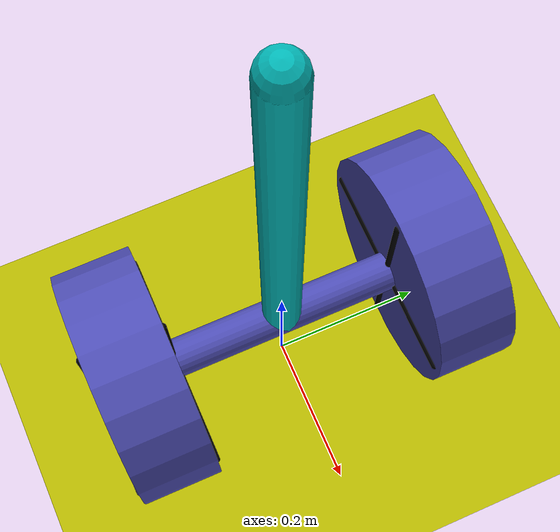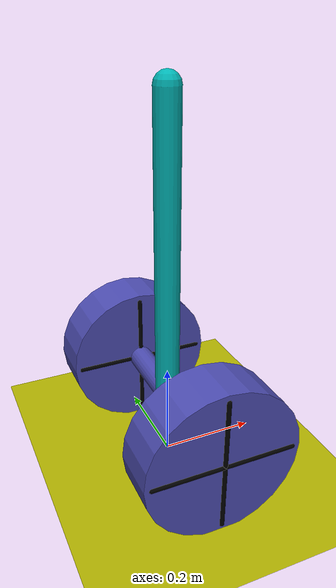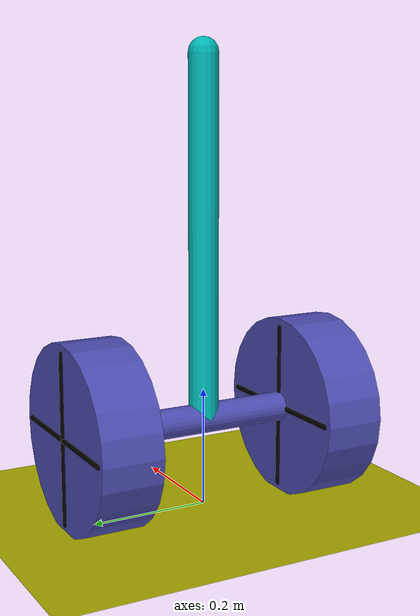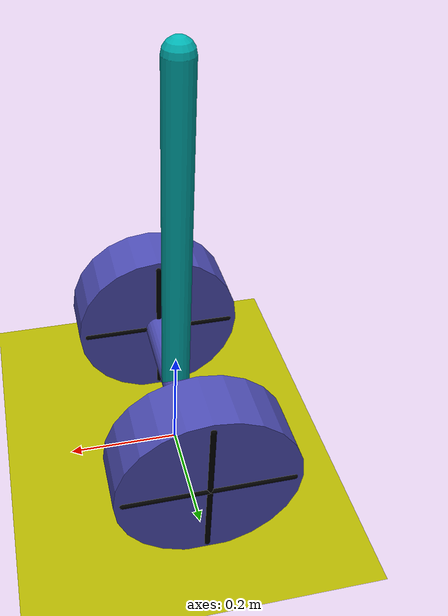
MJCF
<mujoco model="inverted pendulum with wheels">
    <compiler inertiafromgeom="true" />
    <asset>
        <texture name="grid" type="2d" builtin="checker" width="512" height="512" rgb1=".1 .2 .3"
            rgb2=".2 .3 .4" />
        <material name="grid" texture="grid" texrepeat="1 1" texuniform="true" reflectance=".2" />
    </asset>
    <default>
        <joint armature="1" damping="1" limited="true" />
        <geom conaffinity="1" condim="3" contype="1" friction="1 0.05 0.01" rgba="0.7 0.7 0 1" />
        <motor ctrlrange="-3 3" />
    </default>
    <option gravity="0 0 -9.81" integrator="RK4" timestep="0.0168" />
    <size nstack="3000" />
    <worldbody>
        <!-- Ground plane -->
        <geom type="plane" size="2 2 0.01" material="grid" />

        <!-- Lights -->
        <light name="top_light" pos="0 0 5" dir="0 0 -1" diffuse="1 1 1" specular="0.5 0.5 0.5"
            ambient="0.01 0.01 0.01" cutoff="180" />

        <!-- Main body (acts as a shared frame for both wheels and the pendulum) -->
        <body name="Body" pos="0 0 0.15">
            <!-- Slider Joint for Horizontal Movement -->
            <joint axis="1 0 0" limited="true" name="horizontal_position" pos="0 0 0" range="-2 2"
                type="slide" />
            <geom name="axle" type="cylinder" pos="0 0 0" size="0.025 0.2" axisangle="1 0 0 90"
                rgba="0.3 0.3 0.7 1" conaffinity="0" />

            <!-- Wheels -->
            <body name="Wheels" pos="0 0 0">
                <joint name="wheel_joint" type="hinge" pos="0 0 0" axis="0 1 0" range="-inf inf" />

                <body name="right_wheel" pos="0 0.2 0">
                    <geom name="right_wheel_cylinder" type="cylinder" pos="0 0 0" size="0.155 0.051"
                        axisangle="1 0 0 90" rgba="0.3 0.3 0.7 1" />

                    <geom name="right_spoke1" type="capsule" fromto="0 0.05 0 0 0.05 0.14"
                        size="0.005" rgba="0 0 0 1" />
                    <geom name="right_spoke2" type="capsule" fromto="0 0.05 0 0 0.05 -0.14"
                        size="0.005" rgba="0 0 0 1" />
                    <geom name="right_spoke3" type="capsule" fromto="0 0.05 0 -0.14 0.05 0"
                        size="0.005" rgba="0 0 0 1" />
                    <geom name="right_spoke4" type="capsule" fromto="0 0.05 0 0.14 0.05 0"
                        size="0.005" rgba="0 0 0 1" />

                    <geom name="right_spoke5" type="capsule" fromto="0 -0.05 0 0 -0.05 0.14"
                        size="0.005" rgba="0 0 0 1" />
                    <geom name="right_spoke6" type="capsule" fromto="0 -0.05 0 0 -0.05 -0.14"
                        size="0.005" rgba="0 0 0 1" />
                    <geom name="right_spoke7" type="capsule" fromto="0 -0.05 0 -0.14 -0.05 0"
                        size="0.005" rgba="0 0 0 1" />
                    <geom name="right_spoke8" type="capsule" fromto="0 -0.05 0 0.14 -0.05 0"
                        size="0.005" rgba="0 0 0 1" />
                </body>

                <body name="left_wheel" pos="0 -0.2 0">
                    <geom name="left_wheel_cylinder" type="cylinder" pos="0 0 0" size="0.155 0.051"
                        axisangle="1 0 0 90" rgba="0.3 0.3 0.7 1" />

                    <geom name="left_spoke1" type="capsule" fromto="0 0.05 0 0 0.05 0.14"
                        size="0.005" rgba="0 0 0 1" />
                    <geom name="left_spoke2" type="capsule" fromto="0 0.05 0 0 0.05 -0.14"
                        size="0.005" rgba="0 0 0 1" />
                    <geom name="left_spoke3" type="capsule" fromto="0 0.05 0 -0.14 0.05 0"
                        size="0.005" rgba="0 0 0 1" />
                    <geom name="left_spoke4" type="capsule" fromto="0 0.05 0 0.14 0.05 0"
                        size="0.005" rgba="0 0 0 1" />

                    <geom name="left_spoke5" type="capsule" fromto="0 -0.05 0 0 -0.05 0.14"
                        size="0.005" rgba="0 0 0 1" />
                    <geom name="left_spoke6" type="capsule" fromto="0 -0.05 0 0 -0.05 -0.14"
                        size="0.005" rgba="0 0 0 1" />
                    <geom name="left_spoke7" type="capsule" fromto="0 -0.05 0 -0.14 -0.05 0"
                        size="0.005" rgba="0 0 0 1" />
                    <geom name="left_spoke8" type="capsule" fromto="0 -0.05 0 0.14 -0.05 0"
                        size="0.005" rgba="0 0 0 1" />
                </body>

            </body>

            <!-- Pendulum body attached to the axle -->
            <body name="pendulum" pos="0 0 0">
                <joint axis="0 1 0" name="pendulum_hinge" pos="0 0 0" range="-90 90" type="hinge" />
                <geom fromto="0 0 0 0 0 0.6" name="pendulum_geom" rgba="0 0.7 0.7 1" size="0.025"
                    type="capsule" conaffinity="0" mass="2" />
            </body>
        </body>
    </worldbody>

    <!-- Motor controlling both wheel joints -->
    <actuator>
        <motor name="wheel_motor" joint="wheel_joint" gear="100" ctrllimited="true" ctrlrange="-3 3" />
    </actuator>
</mujoco>
